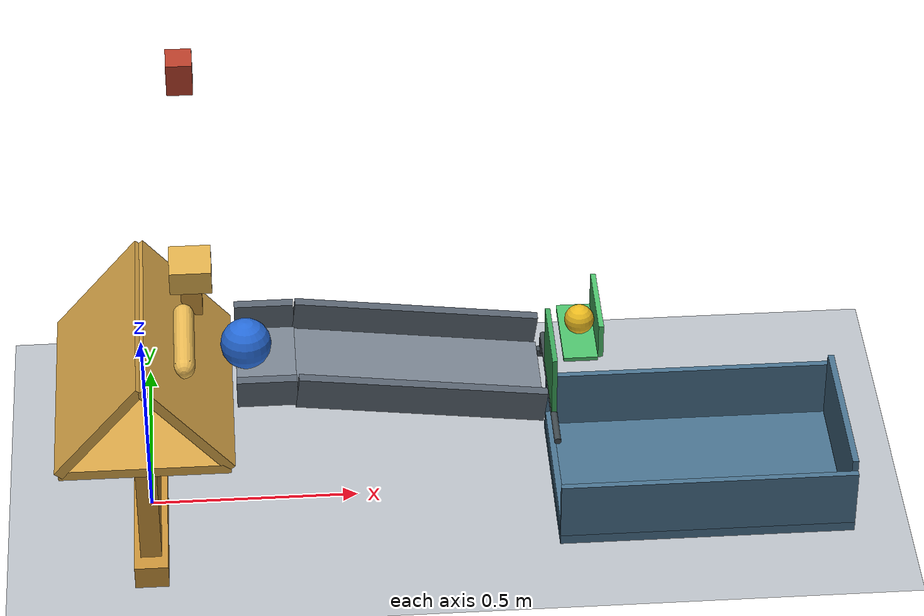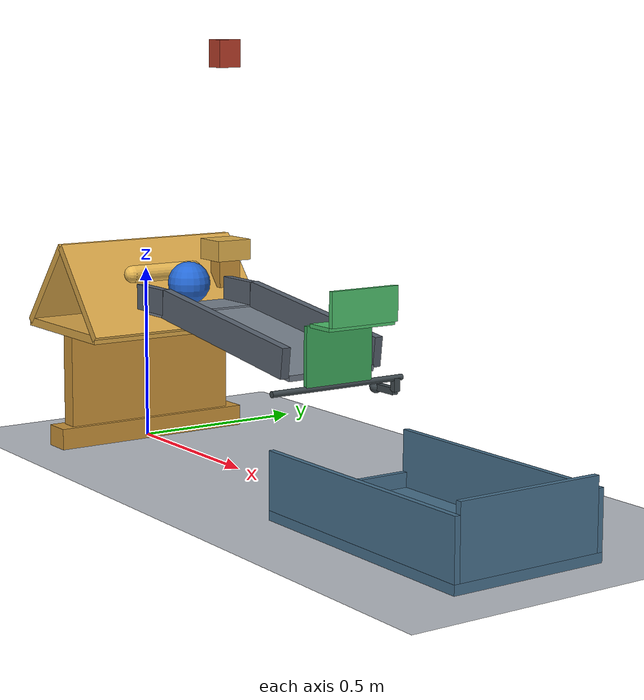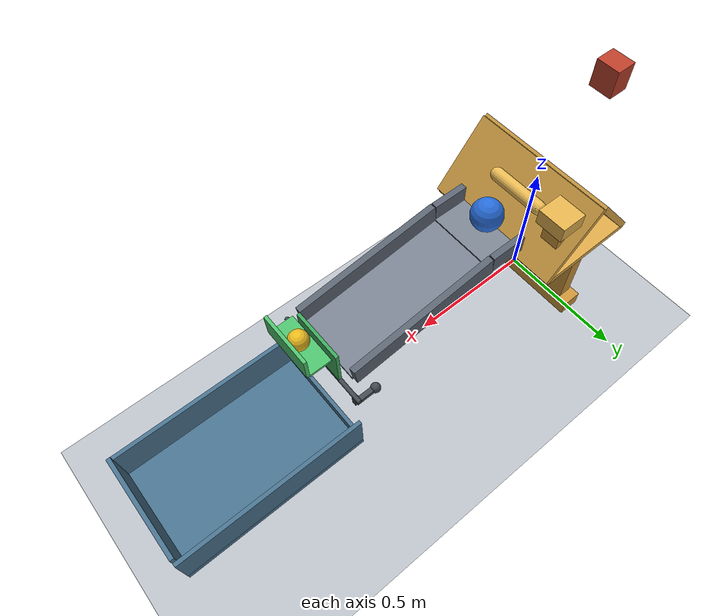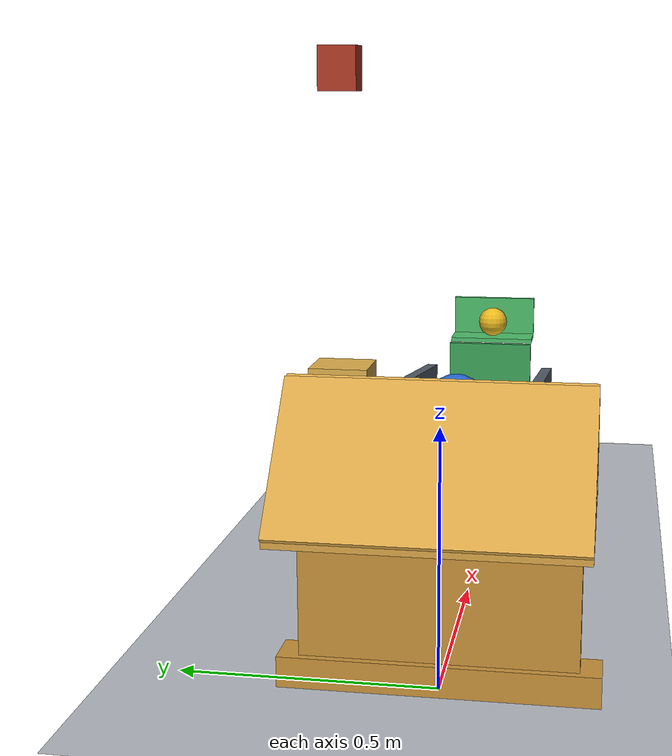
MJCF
<mujoco model="corrected_wedge_flap_release">
  <compiler angle="radian" autolimits="true"/>
  <option timestep="0.002" gravity="0 0 -9.81" integrator="implicitfast" solver="Newton" iterations="100" cone="elliptic" impratio="10"/>
  <size njmax="2000" nconmax="400"/>
  <visual>
    <headlight ambient="0.45 0.45 0.45" diffuse="0.7 0.7 0.7"/>
  </visual>

  <worldbody>
    <light name="overhead" pos="0.7 -1.5 2.5" dir="0 0 -1"/>
    <camera name="overview" pos="2.2 -2.8 2.0" xyaxes="0.88 0.47 0 -0.23 0.43 0.87"/>
    <geom name="floor" type="plane" size="3 3 0.1" friction="1.2 0.005 0.0001" solref="0.008 1" rgba="0.72 0.74 0.77 1"/>

    <!-- The underside starts exactly 0.5 m above the wedge's horizontal loading ledge. -->
    <!-- The offset lane prevents the falling block from contacting ball1. -->
    <body name="block" pos="0.12 0.20 1.125">
      <freejoint name="block_free"/>
      <geom name="block_weight" type="box" size="0.03 0.035 0.04" mass="1.5" friction="1.2 0.005 0.0001" solref="0.006 1" rgba="0.72 0.24 0.16 1"/>
    </body>

    <!-- Entire wedge is free; its narrow foot permits pitching under the offset load. -->
    <body name="wedge" pos="0 0 0.03">
      <freejoint name="wedge_free"/>
      <geom name="wedge_foot" type="box" size="0.04 0.30 0.03" mass="0.12" friction="1.5 0.005 0.0001" solref="0.006 1" rgba="0.78 0.57 0.22 1"/>
      <geom name="wedge_stem" type="box" pos="0 0 0.164" size="0.025 0.26 0.134" mass="0.06" friction="1.2 0.005 0.0001" solref="0.006 1" rgba="0.78 0.57 0.22 1"/>
      <geom name="wedge_bottom" type="box" pos="0 0 0.31" size="0.20 0.28 0.012" mass="0.06" friction="1.2 0.005 0.0001" solref="0.006 1" rgba="0.85 0.65 0.28 1"/>
      <geom name="wedge_left_slope" type="box" pos="-0.1 0 0.43" quat="0.905589 0 -0.424155 0" size="0.156205 0.28 0.012" mass="0.07" friction="1.2 0.005 0.0001" solref="0.006 1" rgba="0.85 0.65 0.28 1"/>
      <geom name="wedge_right_slope" type="box" pos="0.1 0 0.43" quat="0.905589 0 0.424155 0" size="0.156205 0.28 0.012" mass="0.07" friction="1.2 0.005 0.0001" solref="0.006 1" rgba="0.85 0.65 0.28 1"/>
      <geom name="wedge_loading_post" type="box" pos="0.12 0.20 0.455" size="0.025 0.035 0.04" mass="0.005" friction="1.2 0.005 0.0001" solref="0.006 1" rgba="0.78 0.57 0.22 1"/>
      <geom name="wedge_loading_ledge" type="box" pos="0.12 0.20 0.525" size="0.05 0.055 0.03" mass="0.02" friction="1.2 0.005 0.0001" solref="0.006 1" rgba="0.88 0.69 0.30 1"/>
      <geom name="wedge_striker" type="capsule" fromto="0.10 -0.10 0.47 0.10 0.10 0.47" size="0.025" mass="0.03" friction="0.45 0.001 0.00002" solref="0.006 1" rgba="0.92 0.73 0.33 1"/>
    </body>

    <body name="ball1" pos="0.245 0 0.485">
      <freejoint name="ball1_free"/>
      <geom name="ball1_sphere" type="sphere" size="0.06" mass="0.30" friction="0.35 0.001 0.00002" solref="0.008 1" rgba="0.15 0.42 0.85 1"/>
    </body>

    <!-- A level starting shelf prevents an independent gravity launch. -->
    <body name="ramp" pos="0 0 0">
      <geom name="ramp_start_shelf" type="box" pos="0.29 0 0.415" size="0.07 0.13 0.01" friction="0.35 0.001 0.00002" solref="0.008 1" rgba="0.47 0.51 0.56 1"/>
      <geom name="ramp_slope" type="box" pos="0.648974 0 0.374566" quat="0.997929 0 0.064264 0" size="0.292414 0.13 0.008" friction="0.35 0.001 0.00002" solref="0.008 1" rgba="0.47 0.51 0.56 1"/>
      <geom name="ramp_start_rail_left" type="box" pos="0.29 0.142 0.455" size="0.07 0.012 0.035" friction="0.35 0.001 0.00002" rgba="0.35 0.39 0.44 1"/>
      <geom name="ramp_start_rail_right" type="box" pos="0.29 -0.142 0.455" size="0.07 0.012 0.035" friction="0.35 0.001 0.00002" rgba="0.35 0.39 0.44 1"/>
      <geom name="ramp_slope_rail_left" type="box" pos="0.65 0.142 0.4145" quat="0.997929 0 0.064264 0" size="0.292414 0.012 0.04" friction="0.35 0.001 0.00002" rgba="0.35 0.39 0.44 1"/>
      <geom name="ramp_slope_rail_right" type="box" pos="0.65 -0.142 0.4145" quat="0.997929 0 0.064264 0" size="0.292414 0.012 0.04" friction="0.35 0.001 0.00002" rgba="0.35 0.39 0.44 1"/>
    </body>

    <!-- Negative joint motion swings the flap downward to its lower limit. -->
    <!-- The counterweight balances the initial ball load; friction suppresses drift. -->
    <!-- The tall retaining lip carries ball2 until the flap swings past horizontal. -->
    <body name="flap" pos="0.965 0 0.31">
      <joint name="flap_hinge" type="hinge" axis="0 -1 0" limited="true" range="-2 0" frictionloss="0.04" damping="0.002" armature="0.00002" solreffriction="0.004 1" solimpfriction="0.99 0.999 0.0001" solreflimit="0.006 1" solimplimit="0.98 0.999 0.001"/>
      <geom name="flap_striker_panel" type="box" pos="0 0 0.08" size="0.006 0.10 0.08" mass="0.020" friction="0.45 0.001 0.00002" solref="0.006 1" rgba="0.23 0.65 0.35 1"/>
      <geom name="flap_release_shelf" type="box" pos="0.060 0 0.164" size="0.040 0.10 0.005" mass="0.008" friction="0.35 0.001 0.00002" solref="0.006 1" rgba="0.30 0.75 0.42 1"/>
      <geom name="flap_retaining_lip" type="box" pos="0.106 0 0.214" size="0.006 0.10 0.045" mass="0.004" friction="0.35 0.001 0.00002" solref="0.006 1" rgba="0.30 0.75 0.42 1"/>
      <geom name="flap_axle" type="cylinder" quat="0.70710678 0.70710678 0 0" size="0.008 0.20" mass="0.002" friction="0.35 0.001 0.00002" rgba="0.25 0.29 0.31 1"/>
      <geom name="flap_counterweight_support" type="box" pos="0 0.18 -0.0175" size="0.009 0.009 0.0175" mass="0.001" friction="0.35 0.001 0.00002" rgba="0.25 0.29 0.31 1"/>
      <geom name="flap_counterweight_arm" type="box" pos="-0.04 0.18 -0.035" size="0.04 0.009 0.009" mass="0.002" friction="0.35 0.001 0.00002" rgba="0.25 0.29 0.31 1"/>
      <geom name="flap_counterweight" type="sphere" pos="-0.08 0.18 -0.035" size="0.018" mass="0.0306125" friction="0.35 0.001 0.00002" rgba="0.25 0.29 0.31 1"/>
    </body>

    <body name="ball2" pos="1.030 0 0.514">
      <freejoint name="ball2_free"/>
      <geom name="ball2_sphere" type="sphere" size="0.035" mass="0.025" friction="0.65 0.003 0.0001" solref="0.012 1" rgba="0.92 0.73 0.12 1"/>
    </body>

    <body name="cup" pos="0 0 0">
      <geom name="cup_bottom" type="box" pos="1.33 0 0.0125" size="0.355 0.215 0.0125" friction="0.8 0.005 0.0002" solref="0.015 1" rgba="0.28 0.44 0.55 1"/>
      <geom name="cup_left_wall" type="box" pos="0.9825 0 0.045" size="0.0075 0.20 0.020" friction="0.8 0.005 0.0002" solref="0.015 1" rgba="0.28 0.44 0.55 1"/>
      <geom name="cup_right_wall" type="box" pos="1.6775 0 0.115" size="0.0075 0.20 0.090" friction="0.8 0.005 0.0002" solref="0.015 1" rgba="0.28 0.44 0.55 1"/>
      <geom name="cup_front_wall" type="box" pos="1.33 -0.2075 0.10" size="0.355 0.0075 0.075" friction="0.8 0.005 0.0002" solref="0.015 1" rgba="0.28 0.44 0.55 1"/>
      <geom name="cup_back_wall" type="box" pos="1.33 0.2075 0.10" size="0.355 0.0075 0.075" friction="0.8 0.005 0.0002" solref="0.015 1" rgba="0.28 0.44 0.55 1"/>
    </body>
  </worldbody>

  <keyframe>
    <key name="start"/>
  </keyframe>
</mujoco>
